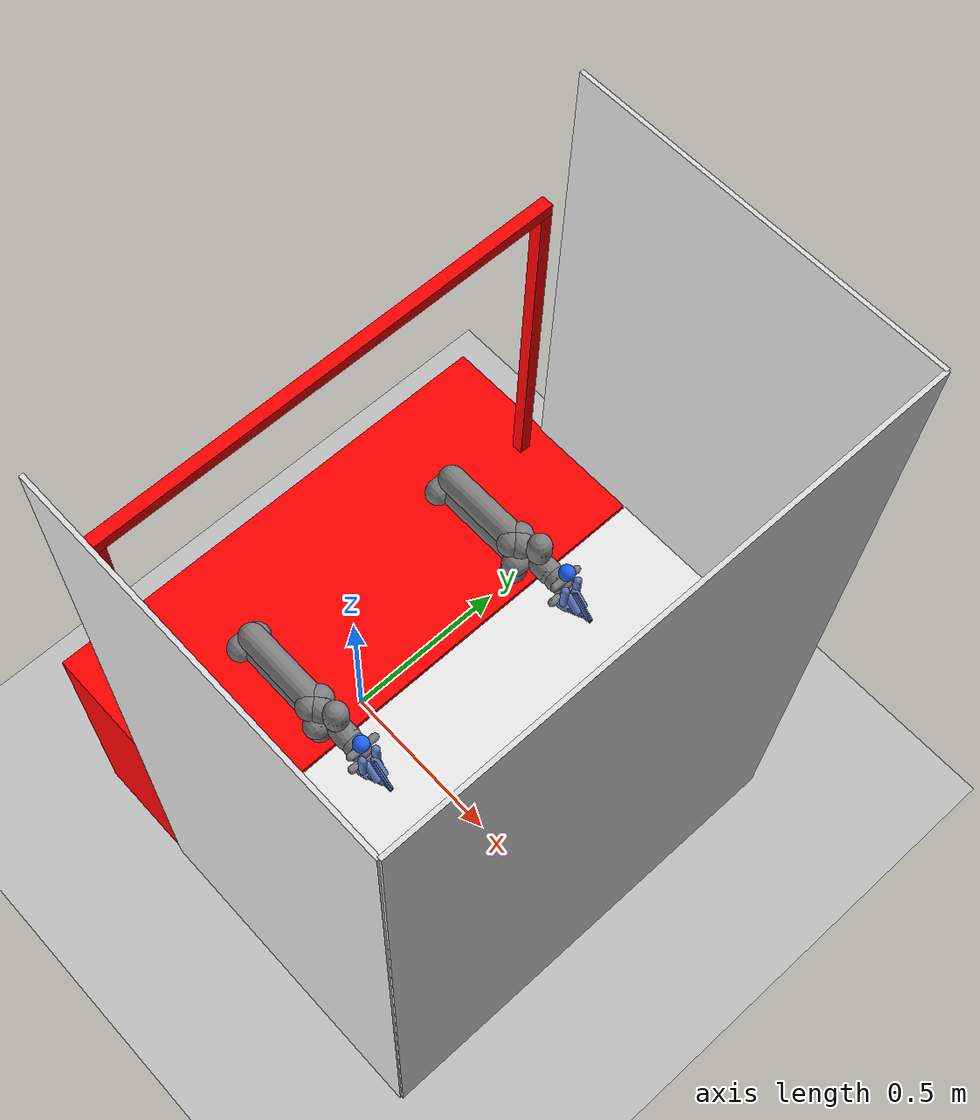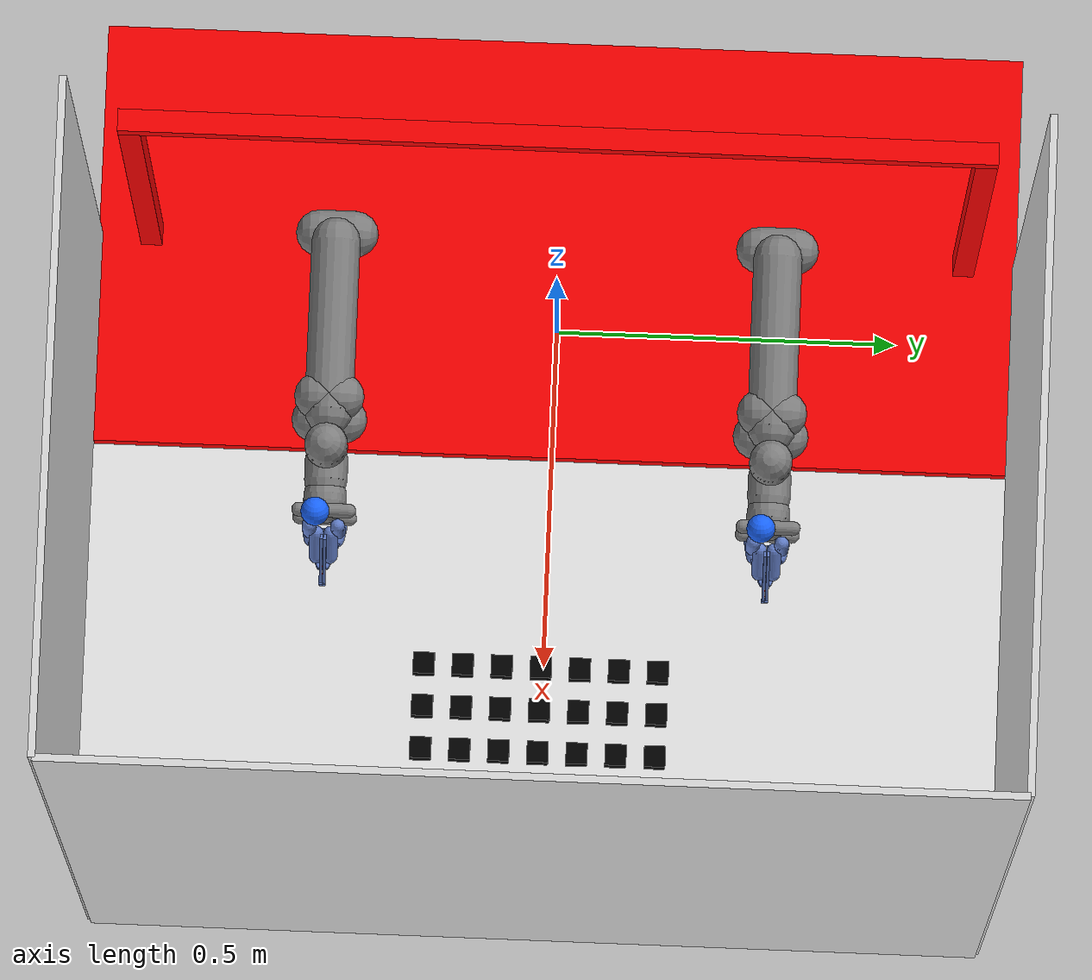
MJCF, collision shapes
<mujoco model="yam_blocks">
  <compiler angle="radian" meshdir="assets" texturedir="assets"/>
  <option integrator="implicitfast"/>

  <visual>
    <global azimuth="120" elevation="-20" offwidth="1920" offheight="1080"/>
    <quality shadowsize="8192" offsamples="16"/>
    <headlight ambient="0.40 0.40 0.40" diffuse="0.0 0.0 0.0" specular="0 0 0"/>
    <rgba haze="1.0 1.0 1.0 1"/>
  </visual>

  <default>
    <default class="yam">
      <position inheritrange="1"/>
      <joint frictionloss="0.1" axis="0 0 1"/>
      <default class="dm4340">
        <joint armature="0.032"/>
        <position kp="40" kv="2.5" forcerange="-28 28"/>
      </default>
      <default class="dm4310">
        <joint armature="0.0018"/>
        <position kp="10" kv="1" forcerange="-10 10"/>
      </default>
      <default class="visual">
        <geom type="mesh" contype="0" conaffinity="0" density="0" group="2" material="black"/>
      </default>
      <default class="collision">
        <geom group="3" type="capsule" friction="2.0 0.1 0.01" condim="6"/>
        <default class="sphere_collision">
          <geom size="0.0006 0 0" type="sphere" rgba="1 0 0 1" friction="4.0 0.1 0.01" condim="6" solimp="0.998 0.998 0.001" solref="0.004 1" priority="2"/>
        </default>
      </default>
      <default class="finger">
        <joint type="slide" armature="0.1" frictionloss="0.1"/>
        <position ctrlrange="0.0 0.0495" kp="400" kv="14" inheritrange="0"/>
      </default>
    </default>
    <default class="block">
      <geom type="mesh" contype="0" conaffinity="0" density="0" group="2"/>
    </default>
  </default>

  <asset>
    <material name="black" rgba="0.30 0.30 0.30 1"/>
    <material name="white" rgba="0.9 0.9 0.9 1"/>
    <texture name="block_tex" type="2d" file="blocks/texture.png"/>
    <material name="block_mat" texture="block_tex" specular="0.3" shininess="0.3"/>

    <!-- Yam arm meshes -->
    <mesh file="i2rt_yam/assets/model2.stl"/>
    <mesh file="i2rt_yam/assets/model2__2.stl"/>
    <mesh file="i2rt_yam/assets/model2__3.stl"/>
    <mesh file="i2rt_yam/assets/model2__4.stl"/>
    <mesh file="i2rt_yam/assets/model2__5.stl"/>
    <mesh file="i2rt_yam/assets/model2__6.stl"/>
    <mesh file="i2rt_yam/assets/model2__7.stl"/>
    <mesh file="i2rt_yam/assets/model2__8.stl"/>
    <mesh file="i2rt_yam/assets/model2__9.stl"/>
    <mesh file="i2rt_yam/assets/model2__10.stl"/>
    <mesh file="i2rt_yam/assets/model2__11.stl"/>
    <mesh file="i2rt_yam/assets/model2__12.stl"/>
    <mesh file="i2rt_yam/assets/model2__13.stl"/>
    <mesh file="i2rt_yam/assets/model2__14.stl"/>
    <mesh file="i2rt_yam/assets/model2__15.stl"/>
    <mesh file="i2rt_yam/assets/model2__16.stl"/>
    <mesh file="i2rt_yam/assets/model2__17.stl"/>
    <mesh name="base_visual_gate" file="i2rt_yam/assets/base_visual_gate.stl"/>
    <mesh name="camera_d405" file="i2rt_yam/assets/d405.stl"/>

    <!-- Block meshes -->
    <mesh name="block_H" file="blocks/block_H.obj" scale="0.15 0.15 0.15"/>
    <mesh name="block_E" file="blocks/block_E.obj" scale="0.15 0.15 0.15"/>
    <mesh name="block_L" file="blocks/block_L.obj" scale="0.15 0.15 0.15"/>
    <mesh name="block_O" file="blocks/block_O.obj" scale="0.15 0.15 0.15"/>
    <mesh name="block_A" file="blocks/block_A.obj" scale="0.15 0.15 0.15"/>
    <mesh name="block_B" file="blocks/block_B.obj" scale="0.15 0.15 0.15"/>
    <mesh name="block_C" file="blocks/block_C.obj" scale="0.15 0.15 0.15"/>
    <mesh name="block_D" file="blocks/block_D.obj" scale="0.15 0.15 0.15"/>
    <mesh name="block_F" file="blocks/block_F.obj" scale="0.15 0.15 0.15"/>
    <mesh name="block_G" file="blocks/block_G.obj" scale="0.15 0.15 0.15"/>
    <mesh name="block_I" file="blocks/block_I.obj" scale="0.15 0.15 0.15"/>
    <mesh name="block_J" file="blocks/block_J.obj" scale="0.15 0.15 0.15"/>
    <mesh name="block_K" file="blocks/block_K.obj" scale="0.15 0.15 0.15"/>
    <mesh name="block_M" file="blocks/block_M.obj" scale="0.15 0.15 0.15"/>
    <mesh name="block_N" file="blocks/block_N.obj" scale="0.15 0.15 0.15"/>
    <mesh name="block_P" file="blocks/block_P.obj" scale="0.15 0.15 0.15"/>
    <mesh name="block_Q" file="blocks/block_Q.obj" scale="0.15 0.15 0.15"/>
    <mesh name="block_R" file="blocks/block_R.obj" scale="0.15 0.15 0.15"/>
    <mesh name="block_S" file="blocks/block_S.obj" scale="0.15 0.15 0.15"/>
    <mesh name="block_T" file="blocks/block_T.obj" scale="0.15 0.15 0.15"/>
    <mesh name="block_U" file="blocks/block_U.obj" scale="0.15 0.15 0.15"/>
    <mesh name="block_V" file="blocks/block_V.obj" scale="0.15 0.15 0.15"/>
    <mesh name="block_W" file="blocks/block_W.obj" scale="0.15 0.15 0.15"/>
    <mesh name="block_X" file="blocks/block_X.obj" scale="0.15 0.15 0.15"/>
    <mesh name="block_Y" file="blocks/block_Y.obj" scale="0.15 0.15 0.15"/>
    <mesh name="block_Z" file="blocks/block_Z.obj" scale="0.15 0.15 0.15"/>

    <texture type="skybox" builtin="gradient" rgb1="1.0 1.0 1.0" rgb2="0.98 0.98 0.98" width="512" height="3072"/>
    <texture type="2d" name="groundplane" builtin="checker" mark="edge"
      rgb1="0.55 0.55 0.55" rgb2="0.50 0.50 0.50" markrgb="0.6 0.6 0.6" width="300" height="300"/>
    <material name="groundplane" texture="groundplane" texuniform="true" texrepeat="5 5" reflectance="0.2"/>
  </asset>

  <worldbody>
    <light pos="0 0 1.5" dir="0 0 -1" directional="true" diffuse="0.30 0.30 0.30" specular="0.05 0.05 0.05"/>
    <geom name="floor" size="0 0 0.05" type="plane" contype="0" conaffinity="0" rgba="0.75 0.75 0.75 1"/>
    <geom name="floor_collision" size="0 0 0.05" type="plane" group="3" rgba="0 0 0 0"/>

    <geom type="mesh" contype="0" conaffinity="0" group="2" density="0" rgba="0.60 0.62 0.68 1" mesh="base_visual_gate"/>
    <geom size="0.2975 0.65 0.375" pos="0 0 0.375" type="box" group="3" rgba="1 0 0 0.0"/>

    <body name="gate_collision" pos="0 0 0.75">
      <geom size="0.015 0.015 0.45" pos="0 0.575 0.45" type="box" group="3" rgba="1 0 0 0.0"/>
      <geom size="0.015 0.015 0.45" pos="0 -0.575 0.45" type="box" group="3" rgba="1 0 0 0.0"/>
      <geom size="0.015 0.015 0.59" pos="0 0 0.915" quat="0.707107 0.707107 0 0" type="box" group="3" rgba="1 0 0 0.0"/>
      <body name="top_bar_center" pos="0 0 0.915">
        <body name="top_camera_d405" pos="0.08600512 -0.009 0.03932053" quat="0.183012 0.683013 0.683013 0.183012">
          <geom type="mesh" contype="0" conaffinity="0" group="2" density="0.001" mass="0.001" rgba="0.22 0.22 0.24 1" mesh="camera_d405"/>
          <body name="top_camera_frame" pos="0.009 0 0" quat="0 0 0 1">
            <camera name="top" pos="0 0 0" quat="0 1 0 0" fovy="58"/>
          </body>
        </body>
      </body>
    </body>

    <geom name="back_wall" type="box" size="0.005 0.65 1.0" pos="0.9 0 1.0" group="2" contype="0" conaffinity="0" rgba="0.88 0.88 0.88 1"/>
    <geom name="back_wall_collision" type="box" size="0.005 0.65 1.0" pos="0.9 0 1.0" group="3" rgba="0 0 0 0"/>
    <geom name="left_wall" type="box" size="0.45 0.005 1.0" pos="0.45 0.65 1.0" group="2" contype="0" conaffinity="0" rgba="0.88 0.88 0.88 1"/>
    <geom name="left_wall_collision" type="box" size="0.45 0.005 1.0" pos="0.45 0.65 1.0" group="3" rgba="0 0 0 0"/>
    <geom name="right_wall" type="box" size="0.45 0.005 1.0" pos="0.45 -0.65 1.0" group="2" contype="0" conaffinity="0" rgba="0.88 0.88 0.88 1"/>
    <geom name="right_wall_collision" type="box" size="0.45 0.005 1.0" pos="0.45 -0.65 1.0" group="3" rgba="0 0 0 0"/>

    <!-- Side cameras on cage walls -->

    <!-- Overhead camera -->
    <body name="overhead_camera" pos="0.55 0.0 1.6">
      <camera name="overhead" pos="0 0 0" quat="0.707 0 0 -0.707" fovy="60"/>
    </body>

    <body name="left_side_camera" pos="0.5 0.55 1.05" euler="-1.3 0 3.14159">
      <camera name="left_side" pos="0 0 0" fovy="70"/>
    </body>
    <body name="right_side_camera" pos="0.5 -0.55 1.05" euler="1.3 0 0">
      <camera name="right_side" pos="0 0 0" fovy="70"/>
    </body>

    <body name="play_table">
      <geom size="0.2975 0.65 0.005" pos="0.6 0 0.745" type="box" group="2" contype="0" conaffinity="0" rgba="0.92 0.92 0.92 1"/>
    </body>
    <geom name="table_plane" type="plane" size="0.2975 0.65 0.01" pos="0.6 0 0.75" rgba="0 0 0 0" group="3"/>

    <!-- ==================== LETTER BLOCKS ==================== -->
    <!-- 4 rows, 55 mm Y spacing, 60 mm X spacing between rows -->
    <!-- Row 1 (x=0.600): A-G -->
    <body name="block_A" pos="0.600 -0.165 0.767" quat="0.707 0 0.707 0">
      <freejoint name="block_A_jnt"/>
      <geom name="block_A_vis" type="mesh" mesh="block_A" material="block_mat" class="block"/>
      <geom name="block_A_col" type="box" size="0.015 0.015 0.015" condim="6" friction="3.0 0.03 0.003" solref="0.004 1" solimp="0.998 0.998 0.001" priority="1" mass="0.005" group="3" rgba="0 0 0 0"/>
    </body>
    <body name="block_B" pos="0.600 -0.110 0.767" quat="0.707 0 0.707 0">
      <freejoint name="block_B_jnt"/>
      <geom name="block_B_vis" type="mesh" mesh="block_B" material="block_mat" class="block"/>
      <geom name="block_B_col" type="box" size="0.015 0.015 0.015" condim="6" friction="3.0 0.03 0.003" solref="0.004 1" solimp="0.998 0.998 0.001" priority="1" mass="0.005" group="3" rgba="0 0 0 0"/>
    </body>
    <body name="block_C" pos="0.600 -0.055 0.767" quat="0.707 0 0.707 0">
      <freejoint name="block_C_jnt"/>
      <geom name="block_C_vis" type="mesh" mesh="block_C" material="block_mat" class="block"/>
      <geom name="block_C_col" type="box" size="0.015 0.015 0.015" condim="6" friction="3.0 0.03 0.003" solref="0.004 1" solimp="0.998 0.998 0.001" priority="1" mass="0.005" group="3" rgba="0 0 0 0"/>
    </body>
    <body name="block_D" pos="0.600  0.000 0.767" quat="0.707 0 0.707 0">
      <freejoint name="block_D_jnt"/>
      <geom name="block_D_vis" type="mesh" mesh="block_D" material="block_mat" class="block"/>
      <geom name="block_D_col" type="box" size="0.015 0.015 0.015" condim="6" friction="3.0 0.03 0.003" solref="0.004 1" solimp="0.998 0.998 0.001" priority="1" mass="0.005" group="3" rgba="0 0 0 0"/>
    </body>
    <body name="block_E" pos="0.600  0.055 0.767" quat="0.707 0 0.707 0">
      <freejoint name="block_E_jnt"/>
      <geom name="block_E_vis" type="mesh" mesh="block_E" material="block_mat" class="block"/>
      <geom name="block_E_col" type="box" size="0.015 0.015 0.015" condim="6" friction="3.0 0.03 0.003" solref="0.004 1" solimp="0.998 0.998 0.001" priority="1" mass="0.005" group="3" rgba="0 0 0 0"/>
    </body>
    <body name="block_F" pos="0.600  0.110 0.767" quat="0.707 0 0.707 0">
      <freejoint name="block_F_jnt"/>
      <geom name="block_F_vis" type="mesh" mesh="block_F" material="block_mat" class="block"/>
      <geom name="block_F_col" type="box" size="0.015 0.015 0.015" condim="6" friction="3.0 0.03 0.003" solref="0.004 1" solimp="0.998 0.998 0.001" priority="1" mass="0.005" group="3" rgba="0 0 0 0"/>
    </body>
    <body name="block_G" pos="0.600  0.165 0.767" quat="0.707 0 0.707 0">
      <freejoint name="block_G_jnt"/>
      <geom name="block_G_vis" type="mesh" mesh="block_G" material="block_mat" class="block"/>
      <geom name="block_G_col" type="box" size="0.015 0.015 0.015" condim="6" friction="3.0 0.03 0.003" solref="0.004 1" solimp="0.998 0.998 0.001" priority="1" mass="0.005" group="3" rgba="0 0 0 0"/>
    </body>
    <!-- Row 2 (x=0.660): H-N -->
    <body name="block_H" pos="0.660 -0.165 0.767" quat="0.707 0 0.707 0">
      <freejoint name="block_H_jnt"/>
      <geom name="block_H_vis" type="mesh" mesh="block_H" material="block_mat" class="block"/>
      <geom name="block_H_col" type="box" size="0.015 0.015 0.015" condim="6" friction="3.0 0.03 0.003" solref="0.004 1" solimp="0.998 0.998 0.001" priority="1" mass="0.005" group="3" rgba="0 0 0 0"/>
    </body>
    <body name="block_I" pos="0.660 -0.110 0.767" quat="0.707 0 0.707 0">
      <freejoint name="block_I_jnt"/>
      <geom name="block_I_vis" type="mesh" mesh="block_I" material="block_mat" class="block"/>
      <geom name="block_I_col" type="box" size="0.015 0.015 0.015" condim="6" friction="3.0 0.03 0.003" solref="0.004 1" solimp="0.998 0.998 0.001" priority="1" mass="0.005" group="3" rgba="0 0 0 0"/>
    </body>
    <body name="block_J" pos="0.660 -0.055 0.767" quat="0.707 0 0.707 0">
      <freejoint name="block_J_jnt"/>
      <geom name="block_J_vis" type="mesh" mesh="block_J" material="block_mat" class="block"/>
      <geom name="block_J_col" type="box" size="0.015 0.015 0.015" condim="6" friction="3.0 0.03 0.003" solref="0.004 1" solimp="0.998 0.998 0.001" priority="1" mass="0.005" group="3" rgba="0 0 0 0"/>
    </body>
    <body name="block_K" pos="0.660  0.000 0.767" quat="0.707 0 0.707 0">
      <freejoint name="block_K_jnt"/>
      <geom name="block_K_vis" type="mesh" mesh="block_K" material="block_mat" class="block"/>
      <geom name="block_K_col" type="box" size="0.015 0.015 0.015" condim="6" friction="3.0 0.03 0.003" solref="0.004 1" solimp="0.998 0.998 0.001" priority="1" mass="0.005" group="3" rgba="0 0 0 0"/>
    </body>
    <body name="block_L" pos="0.660  0.055 0.767" quat="0.707 0 0.707 0">
      <freejoint name="block_L_jnt"/>
      <geom name="block_L_vis" type="mesh" mesh="block_L" material="block_mat" class="block"/>
      <geom name="block_L_col" type="box" size="0.015 0.015 0.015" condim="6" friction="3.0 0.03 0.003" solref="0.004 1" solimp="0.998 0.998 0.001" priority="1" mass="0.005" group="3" rgba="0 0 0 0"/>
    </body>
    <body name="block_M" pos="0.660  0.110 0.767" quat="0.707 0 0.707 0">
      <freejoint name="block_M_jnt"/>
      <geom name="block_M_vis" type="mesh" mesh="block_M" material="block_mat" class="block"/>
      <geom name="block_M_col" type="box" size="0.015 0.015 0.015" condim="6" friction="3.0 0.03 0.003" solref="0.004 1" solimp="0.998 0.998 0.001" priority="1" mass="0.005" group="3" rgba="0 0 0 0"/>
    </body>
    <body name="block_N" pos="0.660  0.165 0.767" quat="0.707 0 0.707 0">
      <freejoint name="block_N_jnt"/>
      <geom name="block_N_vis" type="mesh" mesh="block_N" material="block_mat" class="block"/>
      <geom name="block_N_col" type="box" size="0.015 0.015 0.015" condim="6" friction="3.0 0.03 0.003" solref="0.004 1" solimp="0.998 0.998 0.001" priority="1" mass="0.005" group="3" rgba="0 0 0 0"/>
    </body>
    <!-- Row 3 (x=0.720): O-U -->
    <body name="block_O" pos="0.720 -0.165 0.767" quat="0.707 0 0.707 0">
      <freejoint name="block_O_jnt"/>
      <geom name="block_O_vis" type="mesh" mesh="block_O" material="block_mat" class="block"/>
      <geom name="block_O_col" type="box" size="0.015 0.015 0.015" condim="6" friction="3.0 0.03 0.003" solref="0.004 1" solimp="0.998 0.998 0.001" priority="1" mass="0.005" group="3" rgba="0 0 0 0"/>
    </body>
    <body name="block_P" pos="0.720 -0.110 0.767" quat="0.707 0 0.707 0">
      <freejoint name="block_P_jnt"/>
      <geom name="block_P_vis" type="mesh" mesh="block_P" material="block_mat" class="block"/>
      <geom name="block_P_col" type="box" size="0.015 0.015 0.015" condim="6" friction="3.0 0.03 0.003" solref="0.004 1" solimp="0.998 0.998 0.001" priority="1" mass="0.005" group="3" rgba="0 0 0 0"/>
    </body>
    <body name="block_Q" pos="0.720 -0.055 0.767" quat="0.707 0 0.707 0">
      <freejoint name="block_Q_jnt"/>
      <geom name="block_Q_vis" type="mesh" mesh="block_Q" material="block_mat" class="block"/>
      <geom name="block_Q_col" type="box" size="0.015 0.015 0.015" condim="6" friction="3.0 0.03 0.003" solref="0.004 1" solimp="0.998 0.998 0.001" priority="1" mass="0.005" group="3" rgba="0 0 0 0"/>
    </body>
    <body name="block_R" pos="0.720  0.000 0.767" quat="0.707 0 0.707 0">
      <freejoint name="block_R_jnt"/>
      <geom name="block_R_vis" type="mesh" mesh="block_R" material="block_mat" class="block"/>
      <geom name="block_R_col" type="box" size="0.015 0.015 0.015" condim="6" friction="3.0 0.03 0.003" solref="0.004 1" solimp="0.998 0.998 0.001" priority="1" mass="0.005" group="3" rgba="0 0 0 0"/>
    </body>
    <body name="block_S" pos="0.720  0.055 0.767" quat="0.707 0 0.707 0">
      <freejoint name="block_S_jnt"/>
      <geom name="block_S_vis" type="mesh" mesh="block_S" material="block_mat" class="block"/>
      <geom name="block_S_col" type="box" size="0.015 0.015 0.015" condim="6" friction="3.0 0.03 0.003" solref="0.004 1" solimp="0.998 0.998 0.001" priority="1" mass="0.005" group="3" rgba="0 0 0 0"/>
    </body>
    <body name="block_T" pos="0.720  0.110 0.767" quat="0.707 0 0.707 0">
      <freejoint name="block_T_jnt"/>
      <geom name="block_T_vis" type="mesh" mesh="block_T" material="block_mat" class="block"/>
      <geom name="block_T_col" type="box" size="0.015 0.015 0.015" condim="6" friction="3.0 0.03 0.003" solref="0.004 1" solimp="0.998 0.998 0.001" priority="1" mass="0.005" group="3" rgba="0 0 0 0"/>
    </body>
    <body name="block_U" pos="0.720  0.165 0.767" quat="0.707 0 0.707 0">
      <freejoint name="block_U_jnt"/>
      <geom name="block_U_vis" type="mesh" mesh="block_U" material="block_mat" class="block"/>
      <geom name="block_U_col" type="box" size="0.015 0.015 0.015" condim="6" friction="3.0 0.03 0.003" solref="0.004 1" solimp="0.998 0.998 0.001" priority="1" mass="0.005" group="3" rgba="0 0 0 0"/>
    </body>
    <!-- Row 4 (x=0.780): V-Z (5 blocks, centred on y=0) -->
    <body name="block_V" pos="0.780 -0.110 0.767" quat="0.707 0 0.707 0">
      <freejoint name="block_V_jnt"/>
      <geom name="block_V_vis" type="mesh" mesh="block_V" material="block_mat" class="block"/>
      <geom name="block_V_col" type="box" size="0.015 0.015 0.015" condim="6" friction="3.0 0.03 0.003" solref="0.004 1" solimp="0.998 0.998 0.001" priority="1" mass="0.005" group="3" rgba="0 0 0 0"/>
    </body>
    <body name="block_W" pos="0.780 -0.055 0.767" quat="0.707 0 0.707 0">
      <freejoint name="block_W_jnt"/>
      <geom name="block_W_vis" type="mesh" mesh="block_W" material="block_mat" class="block"/>
      <geom name="block_W_col" type="box" size="0.015 0.015 0.015" condim="6" friction="3.0 0.03 0.003" solref="0.004 1" solimp="0.998 0.998 0.001" priority="1" mass="0.005" group="3" rgba="0 0 0 0"/>
    </body>
    <body name="block_X" pos="0.780  0.000 0.767" quat="0.707 0 0.707 0">
      <freejoint name="block_X_jnt"/>
      <geom name="block_X_vis" type="mesh" mesh="block_X" material="block_mat" class="block"/>
      <geom name="block_X_col" type="box" size="0.015 0.015 0.015" condim="6" friction="3.0 0.03 0.003" solref="0.004 1" solimp="0.998 0.998 0.001" priority="1" mass="0.005" group="3" rgba="0 0 0 0"/>
    </body>
    <body name="block_Y" pos="0.780  0.055 0.767" quat="0.707 0 0.707 0">
      <freejoint name="block_Y_jnt"/>
      <geom name="block_Y_vis" type="mesh" mesh="block_Y" material="block_mat" class="block"/>
      <geom name="block_Y_col" type="box" size="0.015 0.015 0.015" condim="6" friction="3.0 0.03 0.003" solref="0.004 1" solimp="0.998 0.998 0.001" priority="1" mass="0.005" group="3" rgba="0 0 0 0"/>
    </body>
    <body name="block_Z" pos="0.780  0.110 0.767" quat="0.707 0 0.707 0">
      <freejoint name="block_Z_jnt"/>
      <geom name="block_Z_vis" type="mesh" mesh="block_Z" material="block_mat" class="block"/>
      <geom name="block_Z_col" type="box" size="0.015 0.015 0.015" condim="6" friction="3.0 0.03 0.003" solref="0.004 1" solimp="0.998 0.998 0.001" priority="1" mass="0.005" group="3" rgba="0 0 0 0"/>
    </body>

    <!-- ==================== LEFT ARM ==================== -->
    <body name="left_arm" pos="0.2525 0.31 0.76" childclass="yam">
      <geom class="visual" pos="0 0 -0.0006" quat="1 0 0 1" mesh="model2"/>
      <geom class="collision" size="0.033 0.01" pos="0.0 0.0 0.026" quat="1 0 0 0"/>
      <body name="left_link_1" pos="0 0 0.0631" quat="1 0 0 1">
        <inertial pos="-0.00192861 -0.00795735 0.0208176" quat="0.297851 0.642634 0.360045 0.607185" mass="0.12415"
          diaginertia="0.000180751 0.000145532 5.89179e-05"/>
        <joint name="left_joint1" range="-2.61799 3.05433" class="dm4340"/>
        <geom class="visual" pos="5.26159e-07 2.34355e-07 -0.0632" quat="1 0 0 0" mesh="model2__2"/>
        <body name="left_link_2" pos="2.5e-05 -0.02 0.0409" quat="1 1 1 1" gravcomp="1">
          <inertial pos="0.132008 2.10599e-06 0.000293073" quat="1 1 1 1" mass="1.24434"
            diaginertia="0.0121902 0.0121318 0.000683304"/>
          <joint name="left_joint2" range="0 3.66519" class="dm4340"/>
          <geom class="visual" pos="0.0199992 -0.1041 -2.44738e-05" quat="1 -1 -1 -1" mesh="model2__3"/>
          <geom class="visual" pos="0.0199992 -0.1041 -2.44738e-05" quat="1 -1 -1 -1" mesh="model2__4"/>
          <geom class="visual" pos="0.0199992 -0.1041 -2.44738e-05" quat="1 -1 -1 -1" mesh="model2__5" material="white"/>
          <geom class="collision" size="0.032 0.11" pos="0.13 0 0" quat="1 0 1 0"/>
          <geom class="collision" size="0.033 0.02" pos="0 0.0 0" quat="1 0 0 0"/>
          <geom class="collision" size="0.033 0.025" pos="0.265 0 0" quat="1 0 0 0"/>
          <body name="left_link_3" pos="0.264 0 0" quat="0 1 0 0" gravcomp="1">
            <inertial pos="-0.121816 -0.054846 -0.000111108" quat="1 1 1 1" mass="0.853698"
              diaginertia="0.00699732 0.00696112 0.000788244"/>
            <joint name="left_joint3" range="0 3.66519" class="dm4340"/>
            <geom class="visual" pos="-0.244001 0.104101 2.44738e-05" quat="1 1 1 -1" mesh="model2__6"/>
            <geom class="visual" pos="-0.244001 0.104101 2.44738e-05" quat="1 1 1 -1" mesh="model2__7"/>
            <geom class="visual" pos="-0.244001 0.104101 2.44738e-05" quat="1 1 1 -1" mesh="model2__8" material="white"/>
            <geom class="visual" pos="-0.244001 0.104101 2.44738e-05" quat="1 1 1 -1" mesh="model2__9"/>
            <geom class="collision" size="0.034 0.12" pos="-0.14 -0.06 0.0" quat="1 0 1 0"/>
            <geom class="collision" size="0.034 0.015" pos="-0.24 -0.06 0.0" quat="1 0 0 0"/>
            <body name="left_link_4" pos="-0.245 -0.06 0" quat="1 0 0 0" gravcomp="1">
              <inertial pos="-0.0769778 -0.0527104 0.000154878" quat="0.667 0.667 -0.236 -0.236" mass="0.463511"
                diaginertia="0.000791532 0.000744733 0.000282116"/>
              <joint name="left_joint4" range="-1.5708 1.5708" class="dm4310"/>
              <geom class="visual" pos="0.00100023 0.164101 2.44738e-05" quat="1 1 1 -1" mesh="model2__10"/>
              <geom class="collision" size="0.03 0.015" pos="-0.073 -0.06 0.0" quat="1 1 0 0"/>
              <body name="left_link_5" pos="-0.074 -0.0395 2.5e-05" quat="1 -1 1 1" gravcomp="1">
                <inertial pos="3.64861e-05 0.00025665 0.0353526" quat="1 0 0 0" mass="0.350962"
                  diaginertia="0.000197802 0.0001775 0.000147402"/>
                <joint name="left_joint5" range="-1.5708 1.5708" class="dm4310"/>
                <geom class="visual" pos="0 -0.0749971 0.203601" quat="1.32679e-06 1 0 0" mesh="model2__11"/>
                <geom class="collision" size="0.030 0.015" pos="0 0.025 0.0395" quat="1 1 0 0"/>
                <body name="left_link_6" pos="0 0.0353 0.0395" quat="1 -1 0 0" gravcomp="1">
                  <inertial pos="-0.000217767 7.37059e-05 0.0270545" quat="1 1 0 0" mass="0.367476"
                    diaginertia="0.000265958 0.000242686 0.000227409"/>
                  <joint name="left_joint6" range="-2.0944 2.0944" class="dm4310"/>
                  <geom class="visual" pos="0 -0.164101 -0.110597" quat="1 -1 0 0" mesh="model2__12"/>
                  <geom class="visual" pos="0 -0.164101 -0.110597" quat="1 -1 0 0" mesh="model2__13"/>
                  <geom class="collision" size="0.01 0.035" pos="0 0.039 0.052" quat="1 0 1 0"/>
                  <geom class="collision" size="0.030 0.005" pos="0 0.0 0.03" quat="1 0 0 1"/>
                  <geom class="collision" size="0.01 0.035" pos="0 -0.039 0.052" quat="1 0 1 0"/>
                  <site name="left_tcp_site" pos="0 0 0" quat="1 0 0 -1" size="0.005" rgba="1 0 0 1" group="4"/>
                  <site name="left_grasp_site" pos="0 0 0.1347" quat="1 0 0 -1" size="0.005" rgba="0 1 0 1" group="4"/>
                  <body name="left_camera_d405" pos="-0.0107 0.095 0.062" quat="0.906 0.423 0 0">
                    <geom type="mesh" contype="0" conaffinity="0" group="2" density="0.001" mass="0.001"
                      rgba="0.22 0.22 0.24 1" mesh="camera_d405"/>
                    <geom name="left_cam_col" type="sphere" size="0.02" pos="0 0 0"
                      group="3" rgba="0.1 0.4 1 0.3" mass="0.001"/>
                    <body name="left_camera_frame" pos="0.009 0 0" quat="0 0 0 1">
                      <camera name="left" pos="0 0 0" quat="0 1 0 0" fovy="58"/>
                    </body>
                  </body>
                  <body name="left_link_left_finger" pos="-0.037 0.0392 0.0605" quat="1 0 1 0" gravcomp="1">
                    <inertial pos="-0.0192995 -0.0365902 0.039774" quat="0.757351 0.568898 -0.3199 0.0" mass="0.118"
                      diaginertia="0.000159084 0.000154909 4.63655e-05"/>
                    <joint class="finger" name="left_left_finger" range="-0.00205 0.0475"/>
                    <geom class="visual" pos="0.171097 -0.203301 0.037" quat="1 -1 -1 -1" mesh="model2__14"/>
                    <geom class="visual" pos="0.171097 -0.203301 0.037" quat="1 -1 -1 -1" mesh="model2__15"/>
                    <body name="left_lf_rot" quat="1 -1 -1 1" pos="0.0 -0.0392 0.037" gravcomp="1">
                      <geom class="collision" size="0.01 0.03" pos="0.0 -0.02 0.012" quat="1 0 1 0" rgba="0.381493 0.492734 0.780446 1"/>
                      <geom class="collision" size="0.01 0.02" pos="-0.02 -0.01 0.032" quat="1 0 2.5 0" rgba="0.381493 0.492734 0.780446 1"/>
                      <body name="left_lf_down" quat="1 0 0 0" pos="-0.044 0.0 0.0" gravcomp="1">
                        <geom class="collision" size="0.01 0.01" pos="0.0 -0.020 0.012" quat="1 -0.1 0 0" rgba="0.381493 0.492734 0.780446 1"/>
                        <geom class="collision" size="0.003 0.022" pos="0.005 -0.014 0.04" quat="1 -0.2 0 0" rgba="0.381493 0.492734 0.780446 1"/>
                        <geom class="collision" size="0.003 0.022" pos="-0.005 -0.014 0.04" quat="1 -0.2 0 0" rgba="0.381493 0.492734 0.780446 1"/>
                        <geom class="collision" type="box" size="0.006 0.002 0.04" friction="3.0 0.1 0.01" priority="2" solref="0.004 1" solimp="0.998 0.998 0.001" pos="0 -0.0024 0.046" quat="1 0 0 0" rgba="0.381493 0.492734 0.780446 1"/>
                        <geom class="collision" type="box" size="0.006 0.002 0.039" friction="3.0 0.1 0.01" priority="2" solref="0.004 1" solimp="0.998 0.998 0.001" pos="0.027 -0.0024 0.053" quat="1 0 2.5 0" rgba="0.381493 0.492734 0.780446 1"/>
                        <geom class="sphere_collision" pos="0.003  -0.0004 0.078"/>
                        <geom class="sphere_collision" pos="-0.003 -0.0004 0.078"/>
                        <geom class="sphere_collision" pos="0.003  -0.0004 0.07"/>
                        <geom class="sphere_collision" pos="-0.003 -0.0004 0.07"/>
                        <geom class="sphere_collision" pos="0.003  -0.0004 0.06"/>
                        <geom class="sphere_collision" pos="-0.003 -0.0004 0.06"/>
                      </body>
                    </body>
                  </body>
                  <body name="left_link_right_finger" pos="0.037 -0.0392 0.0605" quat="1 0 1 0" gravcomp="1">
                    <inertial pos="-0.0192995 0.0365902 -0.039774" quat="-0.757351 0.568898 -0.3199 0" mass="0.118"
                      diaginertia="0.000159084 0.000154909 4.63655e-05"/>
                    <joint class="finger" name="left_right_finger" range="-0.0475 0.00205"/>
                    <geom class="visual" pos="0.171097 -0.124901 -0.037" quat="1 -1 -1 -1" mesh="model2__16"/>
                    <geom class="visual" pos="0.171097 -0.124901 -0.037" quat="1 -1 -1 -1" mesh="model2__17"/>
                    <body name="left_rf_rot" quat="1 1 -1 -1" pos="0.0 0.0392 -0.037" gravcomp="1">
                      <geom class="collision" size="0.01 0.03" pos="0.0 -0.02 0.012" quat="1 0 1 0" rgba="0.381493 0.492734 0.780446 1"/>
                      <geom class="collision" size="0.01 0.02" pos="0.02 -0.01 0.032" quat="1 0 -2.5 0" rgba="0.381493 0.492734 0.780446 1"/>
                      <body name="left_rf_down" quat="1 0 0 0" pos="0.044 0.0 0.0" gravcomp="1">
                        <geom class="collision" size="0.01 0.01" pos="0.0 -0.020 0.012" quat="1 -0.1 0 0" rgba="0.381493 0.492734 0.780446 1"/>
                        <geom class="collision" size="0.003 0.022" pos="0.005 -0.014 0.04" quat="1 -0.2 0 0" rgba="0.381493 0.492734 0.780446 1"/>
                        <geom class="collision" size="0.003 0.022" pos="-0.005 -0.014 0.04" quat="1 -0.2 0 0" rgba="0.381493 0.492734 0.780446 1"/>
                        <geom class="collision" type="box" size="0.006 0.002 0.04" friction="3.0 0.1 0.01" priority="2" solref="0.004 1" solimp="0.998 0.998 0.001" pos="0 -0.0024 0.046" quat="1 0 0 0" rgba="0.381493 0.492734 0.780446 1"/>
                        <geom class="collision" type="box" size="0.006 0.002 0.039" friction="3.0 0.1 0.01" priority="2" solref="0.004 1" solimp="0.998 0.998 0.001" pos="-0.027 -0.0024 0.053" quat="1 0 -2.5 0" rgba="0.381493 0.492734 0.780446 1"/>
                        <geom class="sphere_collision" pos="0.003  -0.0004 0.078"/>
                        <geom class="sphere_collision" pos="-0.003 -0.0004 0.078"/>
                        <geom class="sphere_collision" pos="0.003  -0.0004 0.07"/>
                        <geom class="sphere_collision" pos="-0.003 -0.0004 0.07"/>
                        <geom class="sphere_collision" pos="0.003  -0.0004 0.06"/>
                        <geom class="sphere_collision" pos="-0.003 -0.0004 0.06"/>
                      </body>
                    </body>
                  </body>
                </body>
              </body>
            </body>
          </body>
        </body>
      </body>
    </body>

    <!-- ==================== RIGHT ARM ==================== -->
    <body name="right_arm" pos="0.2525 -0.31 0.76" childclass="yam">
      <geom class="visual" pos="0 0 -0.0006" quat="1 0 0 1" mesh="model2"/>
      <geom class="collision" size="0.033 0.01" pos="0.0 0.0 0.026" quat="1 0 0 0"/>
      <body name="right_link_1" pos="0 0 0.0631" quat="1 0 0 1">
        <inertial pos="-0.00192861 -0.00795735 0.0208176" quat="0.297851 0.642634 0.360045 0.607185" mass="0.12415"
          diaginertia="0.000180751 0.000145532 5.89179e-05"/>
        <joint name="right_joint1" range="-2.61799 3.05433" class="dm4340"/>
        <geom class="visual" pos="5.26159e-07 2.34355e-07 -0.0632" quat="1 0 0 0" mesh="model2__2"/>
        <body name="right_link_2" pos="2.5e-05 -0.02 0.0409" quat="1 1 1 1" gravcomp="1">
          <inertial pos="0.132008 2.10599e-06 0.000293073" quat="1 1 1 1" mass="1.24434"
            diaginertia="0.0121902 0.0121318 0.000683304"/>
          <joint name="right_joint2" range="0 3.66519" class="dm4340"/>
          <geom class="visual" pos="0.0199992 -0.1041 -2.44738e-05" quat="1 -1 -1 -1" mesh="model2__3"/>
          <geom class="visual" pos="0.0199992 -0.1041 -2.44738e-05" quat="1 -1 -1 -1" mesh="model2__4"/>
          <geom class="visual" pos="0.0199992 -0.1041 -2.44738e-05" quat="1 -1 -1 -1" mesh="model2__5" material="white"/>
          <geom class="collision" size="0.032 0.11" pos="0.13 0 0" quat="1 0 1 0"/>
          <geom class="collision" size="0.033 0.02" pos="0 0.0 0" quat="1 0 0 0"/>
          <geom class="collision" size="0.033 0.025" pos="0.265 0 0" quat="1 0 0 0"/>
          <body name="right_link_3" pos="0.264 0 0" quat="0 1 0 0" gravcomp="1">
            <inertial pos="-0.121816 -0.054846 -0.000111108" quat="1 1 1 1" mass="0.853698"
              diaginertia="0.00699732 0.00696112 0.000788244"/>
            <joint name="right_joint3" range="0 3.66519" class="dm4340"/>
            <geom class="visual" pos="-0.244001 0.104101 2.44738e-05" quat="1 1 1 -1" mesh="model2__6"/>
            <geom class="visual" pos="-0.244001 0.104101 2.44738e-05" quat="1 1 1 -1" mesh="model2__7"/>
            <geom class="visual" pos="-0.244001 0.104101 2.44738e-05" quat="1 1 1 -1" mesh="model2__8" material="white"/>
            <geom class="visual" pos="-0.244001 0.104101 2.44738e-05" quat="1 1 1 -1" mesh="model2__9"/>
            <geom class="collision" size="0.034 0.12" pos="-0.14 -0.06 0.0" quat="1 0 1 0"/>
            <geom class="collision" size="0.034 0.015" pos="-0.24 -0.06 0.0" quat="1 0 0 0"/>
            <body name="right_link_4" pos="-0.245 -0.06 0" quat="1 0 0 0" gravcomp="1">
              <inertial pos="-0.0769778 -0.0527104 0.000154878" quat="0.667 0.667 -0.236 -0.236" mass="0.463511"
                diaginertia="0.000791532 0.000744733 0.000282116"/>
              <joint name="right_joint4" range="-1.5708 1.5708" class="dm4310"/>
              <geom class="visual" pos="0.00100023 0.164101 2.44738e-05" quat="1 1 1 -1" mesh="model2__10"/>
              <geom class="collision" size="0.03 0.015" pos="-0.073 -0.06 0.0" quat="1 1 0 0"/>
              <body name="right_link_5" pos="-0.074 -0.0395 2.5e-05" quat="1 -1 1 1" gravcomp="1">
                <inertial pos="3.64861e-05 0.00025665 0.0353526" quat="1 0 0 0" mass="0.350962"
                  diaginertia="0.000197802 0.0001775 0.000147402"/>
                <joint name="right_joint5" range="-1.5708 1.5708" class="dm4310"/>
                <geom class="visual" pos="0 -0.0749971 0.203601" quat="1.32679e-06 1 0 0" mesh="model2__11"/>
                <geom class="collision" size="0.030 0.015" pos="0 0.025 0.0395" quat="1 1 0 0"/>
                <body name="right_link_6" pos="0 0.0353 0.0395" quat="1 -1 0 0" gravcomp="1">
                  <inertial pos="-0.000217767 7.37059e-05 0.0270545" quat="1 1 0 0" mass="0.367476"
                    diaginertia="0.000265958 0.000242686 0.000227409"/>
                  <joint name="right_joint6" range="-2.0944 2.0944" class="dm4310"/>
                  <geom class="visual" pos="0 -0.164101 -0.110597" quat="1 -1 0 0" mesh="model2__12"/>
                  <geom class="visual" pos="0 -0.164101 -0.110597" quat="1 -1 0 0" mesh="model2__13"/>
                  <geom class="collision" size="0.01 0.035" pos="0 0.039 0.052" quat="1 0 1 0"/>
                  <geom class="collision" size="0.030 0.005" pos="0 0.0 0.03" quat="1 0 0 1"/>
                  <geom class="collision" size="0.01 0.035" pos="0 -0.039 0.052" quat="1 0 1 0"/>
                  <site name="right_tcp_site" pos="0 0 0" quat="1 0 0 -1" size="0.005" rgba="1 0 0 1" group="4"/>
                  <site name="right_grasp_site" pos="0 0 0.1347" quat="1 0 0 -1" size="0.005" rgba="0 1 0 1" group="4"/>
                  <body name="right_camera_d405" pos="-0.0107 0.095 0.062" quat="0.906 0.423 0 0">
                    <geom type="mesh" contype="0" conaffinity="0" group="2" density="0.001" mass="0.001"
                      rgba="0.22 0.22 0.24 1" mesh="camera_d405"/>
                    <geom name="right_cam_col" type="sphere" size="0.02" pos="0 0 0"
                      group="3" rgba="0.1 0.4 1 0.3" mass="0.001"/>
                    <body name="right_camera_frame" pos="0.009 0 0" quat="0 0 0 1">
                      <camera name="right" pos="0 0 0" quat="0 1 0 0" fovy="58"/>
                    </body>
                  </body>
                  <body name="right_link_left_finger" pos="-0.037 0.0392 0.0605" quat="1 0 1 0" gravcomp="1">
                    <inertial pos="-0.0192995 -0.0365902 0.039774" quat="0.757351 0.568898 -0.3199 0.0" mass="0.118"
                      diaginertia="0.000159084 0.000154909 4.63655e-05"/>
                    <joint class="finger" name="right_left_finger" range="-0.00205 0.0475"/>
                    <geom class="visual" pos="0.171097 -0.203301 0.037" quat="1 -1 -1 -1" mesh="model2__14"/>
                    <geom class="visual" pos="0.171097 -0.203301 0.037" quat="1 -1 -1 -1" mesh="model2__15"/>
                    <body name="right_lf_rot" quat="1 -1 -1 1" pos="0.0 -0.0392 0.037" gravcomp="1">
                      <geom class="collision" size="0.01 0.03" pos="0.0 -0.02 0.012" quat="1 0 1 0" rgba="0.381493 0.492734 0.780446 1"/>
                      <geom class="collision" size="0.01 0.02" pos="-0.02 -0.01 0.032" quat="1 0 2.5 0" rgba="0.381493 0.492734 0.780446 1"/>
                      <body name="right_lf_down" quat="1 0 0 0" pos="-0.044 0.0 0.0" gravcomp="1">
                        <geom class="collision" size="0.01 0.01" pos="0.0 -0.020 0.012" quat="1 -0.1 0 0" rgba="0.381493 0.492734 0.780446 1"/>
                        <geom class="collision" size="0.003 0.022" pos="0.005 -0.014 0.04" quat="1 -0.2 0 0" rgba="0.381493 0.492734 0.780446 1"/>
                        <geom class="collision" size="0.003 0.022" pos="-0.005 -0.014 0.04" quat="1 -0.2 0 0" rgba="0.381493 0.492734 0.780446 1"/>
                        <geom class="collision" type="box" size="0.006 0.002 0.04" friction="3.0 0.1 0.01" priority="2" solref="0.004 1" solimp="0.998 0.998 0.001" pos="0 -0.0024 0.046" quat="1 0 0 0" rgba="0.381493 0.492734 0.780446 1"/>
                        <geom class="collision" type="box" size="0.006 0.002 0.039" friction="3.0 0.1 0.01" priority="2" solref="0.004 1" solimp="0.998 0.998 0.001" pos="0.027 -0.0024 0.053" quat="1 0 2.5 0" rgba="0.381493 0.492734 0.780446 1"/>
                        <geom class="sphere_collision" pos="0.003  -0.0004 0.078"/>
                        <geom class="sphere_collision" pos="-0.003 -0.0004 0.078"/>
                        <geom class="sphere_collision" pos="0.003  -0.0004 0.07"/>
                        <geom class="sphere_collision" pos="-0.003 -0.0004 0.07"/>
                        <geom class="sphere_collision" pos="0.003  -0.0004 0.06"/>
                        <geom class="sphere_collision" pos="-0.003 -0.0004 0.06"/>
                      </body>
                    </body>
                  </body>
                  <body name="right_link_right_finger" pos="0.037 -0.0392 0.0605" quat="1 0 1 0" gravcomp="1">
                    <inertial pos="-0.0192995 0.0365902 -0.039774" quat="-0.757351 0.568898 -0.3199 0" mass="0.118"
                      diaginertia="0.000159084 0.000154909 4.63655e-05"/>
                    <joint class="finger" name="right_right_finger" range="-0.0475 0.00205"/>
                    <geom class="visual" pos="0.171097 -0.124901 -0.037" quat="1 -1 -1 -1" mesh="model2__16"/>
                    <geom class="visual" pos="0.171097 -0.124901 -0.037" quat="1 -1 -1 -1" mesh="model2__17"/>
                    <body name="right_rf_rot" quat="1 1 -1 -1" pos="0.0 0.0392 -0.037" gravcomp="1">
                      <geom class="collision" size="0.01 0.03" pos="0.0 -0.02 0.012" quat="1 0 1 0" rgba="0.381493 0.492734 0.780446 1"/>
                      <geom class="collision" size="0.01 0.02" pos="0.02 -0.01 0.032" quat="1 0 -2.5 0" rgba="0.381493 0.492734 0.780446 1"/>
                      <body name="right_rf_down" quat="1 0 0 0" pos="0.044 0.0 0.0" gravcomp="1">
                        <geom class="collision" size="0.01 0.01" pos="0.0 -0.020 0.012" quat="1 -0.1 0 0" rgba="0.381493 0.492734 0.780446 1"/>
                        <geom class="collision" size="0.003 0.022" pos="0.005 -0.014 0.04" quat="1 -0.2 0 0" rgba="0.381493 0.492734 0.780446 1"/>
                        <geom class="collision" size="0.003 0.022" pos="-0.005 -0.014 0.04" quat="1 -0.2 0 0" rgba="0.381493 0.492734 0.780446 1"/>
                        <geom class="collision" type="box" size="0.006 0.002 0.04" friction="3.0 0.1 0.01" priority="2" solref="0.004 1" solimp="0.998 0.998 0.001" pos="0 -0.0024 0.046" quat="1 0 0 0" rgba="0.381493 0.492734 0.780446 1"/>
                        <geom class="collision" type="box" size="0.006 0.002 0.039" friction="3.0 0.1 0.01" priority="2" solref="0.004 1" solimp="0.998 0.998 0.001" pos="-0.027 -0.0024 0.053" quat="1 0 -2.5 0" rgba="0.381493 0.492734 0.780446 1"/>
                        <geom class="sphere_collision" pos="0.003  -0.0004 0.078"/>
                        <geom class="sphere_collision" pos="-0.003 -0.0004 0.078"/>
                        <geom class="sphere_collision" pos="0.003  -0.0004 0.07"/>
                        <geom class="sphere_collision" pos="-0.003 -0.0004 0.07"/>
                        <geom class="sphere_collision" pos="0.003  -0.0004 0.06"/>
                        <geom class="sphere_collision" pos="-0.003 -0.0004 0.06"/>
                      </body>
                    </body>
                  </body>
                </body>
              </body>
            </body>
          </body>
        </body>
      </body>
    </body>

  </worldbody>

  <equality>
    <joint joint1="left_left_finger" joint2="left_right_finger" polycoef="0 -1 0 0 0"/>
    <joint joint1="right_left_finger" joint2="right_right_finger" polycoef="0 -1 0 0 0"/>
  </equality>

  <actuator>
    <position name="left_joint1" joint="left_joint1" class="dm4340"/>
    <position name="left_joint2" joint="left_joint2" class="dm4340"/>
    <position name="left_joint3" joint="left_joint3" class="dm4340"/>
    <position name="left_joint4" joint="left_joint4" class="dm4310" kp="20" kv=".5"/>
    <position name="left_joint5" joint="left_joint5" class="dm4310"/>
    <position name="left_joint6" joint="left_joint6" class="dm4310"/>
    <position class="finger" name="left_gripper" joint="left_left_finger"/>
    <position name="right_joint1" joint="right_joint1" class="dm4340"/>
    <position name="right_joint2" joint="right_joint2" class="dm4340"/>
    <position name="right_joint3" joint="right_joint3" class="dm4340"/>
    <position name="right_joint4" joint="right_joint4" class="dm4310" kp="20" kv=".5"/>
    <position name="right_joint5" joint="right_joint5" class="dm4310"/>
    <position name="right_joint6" joint="right_joint6" class="dm4310"/>
    <position class="finger" name="right_gripper" joint="right_left_finger"/>
  </actuator>

  <keyframe>
    <key name="home"
      qpos="0.6008 -0.1378 0.767 0.707 0 0.707 0 0.5987 -0.0917 0.767 0.707 0 0.707 0 0.6014 -0.0439 0.767 0.707 0 0.707 0 0.6024 -0.0025 0.767 0.707 0 0.707 0 0.5995 0.0422 0.767 0.707 0 0.707 0 0.5983 0.0900 0.767 0.707 0 0.707 0 0.5972 0.1332 0.767 0.707 0 0.707 0 0.6559 -0.1347 0.767 0.707 0 0.707 0 0.6533 -0.0895 0.767 0.707 0 0.707 0 0.6569 -0.0480 0.767 0.707 0 0.707 0 0.6568 0.0012 0.767 0.707 0 0.707 0 0.6540 0.0429 0.767 0.707 0 0.707 0 0.6577 0.0890 0.767 0.707 0 0.707 0 0.6526 0.1326 0.767 0.707 0 0.707 0 0.7121 -0.1344 0.767 0.707 0 0.707 0 0.7118 -0.0886 0.767 0.707 0 0.707 0 0.7102 -0.0422 0.767 0.707 0 0.707 0 0.7093 0.0003 0.767 0.707 0 0.707 0 0.7120 0.0457 0.767 0.707 0 0.707 0 0.7122 0.0905 0.767 0.707 0 0.707 0 0.7112 0.1323 0.767 0.707 0 0.707 0 0.7634 -0.1363 0.767 0.707 0 0.707 0 0.7625 -0.0916 0.767 0.707 0 0.707 0 0.7626 -0.0463 0.767 0.707 0 0.707 0 0.7658 -0.0008 0.767 0.707 0 0.707 0 0.7642 0.0433 0.767 0.707 0 0.707 0
            0 1.047 1.047 0 0 0 0 0  0 1.047 1.047 0 0 0 0 0"
      ctrl="0 1.047 1.047 0 0 0 0  0 1.047 1.047 0 0 0 0"/>
  </keyframe>
</mujoco>
